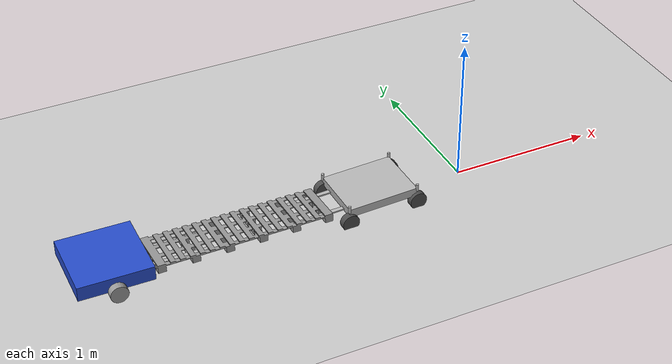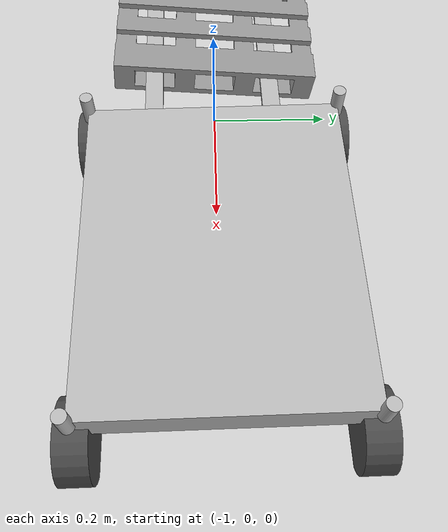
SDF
<sdf version="1.7">
 <world name="default">
  <light name="sun" type="directional">
   <pose>0 0 10 0 -0 0</pose>
   <diffuse>0.8 0.8 0.8 1</diffuse>
   <specular>0.2 0.2 0.2 1</specular>
   <attenuation>
    <range>1000</range>
    <constant>0.9</constant>
    <linear>0.01</linear>
    <quadratic>0.001</quadratic>
   </attenuation>
   <direction>-0.5 0.1 -0.9</direction>
   <spot><inner_angle>0</inner_angle><outer_angle>0</outer_angle><falloff>0</falloff></spot>
  </light>
  <model name="ground_plane">
   <static>1</static>
   <link name="link">
    <collision name="collision">
     <geometry><plane><normal>0 0 1</normal><size>100 100</size></plane></geometry>
     <surface><friction><ode><mu>100</mu><mu2>50</mu2></ode></friction></surface>
    </collision>
    <visual name="visual">
     <cast_shadows>0</cast_shadows>
     <geometry><plane><normal>0 0 1</normal><size>100 100</size></plane></geometry>
     <material>
      <script><uri>file://media/materials/scripts/gazebo.material</uri><name>Gazebo/Grey</name></script>
     </material>
    </visual>
   </link>
  </model>
  <gravity>0 0 -9.8</gravity>
  <magnetic_field>6e-06 2.3e-05 -4.2e-05</magnetic_field>
  <atmosphere type="adiabatic"/>
  <physics type="ode">
   <max_step_size>0.001</max_step_size>
   <real_time_factor>1</real_time_factor>
   <real_time_update_rate>1000</real_time_update_rate>
  </physics>
  <scene><ambient>0.4 0.4 0.4 1</ambient><background>0.7 0.7 0.7 1</background><shadows>1</shadows></scene>
  <audio><device>default</device></audio>
  <spherical_coordinates>
   <surface_model>EARTH_WGS84</surface_model>
   <latitude_deg>0</latitude_deg>
   <longitude_deg>0</longitude_deg>
   <elevation>0</elevation>
   <heading_deg>0</heading_deg>
  </spherical_coordinates>
  <model name="my_robot">
   <link name="base_footprint">
    <inertial>
     <pose>0.00298 0 0.083212 0 -0 0</pose>
     <mass>3.02</mass>
     <inertia>
      <ixx>0.0168339</ixx>
      <ixy>0</ixy>
      <ixz>0.000163907</ixz>
      <iyy>0.0584147</iyy>
      <iyz>8.47033e-22</iyz>
      <izz>0.0442952</izz>
     </inertia>
    </inertial>
    <collision name="base_footprint_fixed_joint_lump__base_link_collision">
     <pose>0 0 0.11 0 -0 0</pose>
     <geometry><box><size>0.5 0.5 0.1</size></box></geometry>
    </collision>
    <collision name="base_footprint_fixed_joint_lump__back_caster_wheel_link_collision_1">
     <pose>-0.166667 0 0.03 0 -0 0</pose>
     <geometry><sphere><radius>0.03</radius></sphere></geometry>
     <surface><friction><ode><mu>0.1</mu><mu2>0.1</mu2></ode></friction></surface>
    </collision>
    <collision name="base_footprint_fixed_joint_lump__front_caster_wheel_link_collision_2">
     <pose>0.166667 0 0.03 0 -0 0</pose>
     <geometry><sphere><radius>0.03</radius></sphere></geometry>
     <surface><friction><ode><mu>0.1</mu><mu2>0.1</mu2></ode></friction></surface>
    </collision>
    <collision name="base_footprint_fixed_joint_lump__left_fork_link_collision_3">
     <pose>0.45 0.105 0.06 0 -0 0</pose>
     <geometry><box><size>0.4 0.03 0.01</size></box></geometry>
    </collision>
    <collision name="base_footprint_fixed_joint_lump__right_fork_link_collision_4">
     <pose>0.45 -0.105 0.06 0 -0 0</pose>
     <geometry><box><size>0.4 0.03 0.01</size></box></geometry>
    </collision>
    <visual name="base_footprint_fixed_joint_lump__base_link_visual">
     <pose>0 0 0.11 0 -0 0</pose>
     <geometry><box><size>0.5 0.5 0.1</size></box></geometry>
     <material>
      <script><name>Gazebo/Blue</name><uri>file://media/materials/scripts/gazebo.material</uri></script>
     </material>
    </visual>
    <visual name="base_footprint_fixed_joint_lump__back_caster_wheel_link_visual_1">
     <pose>-0.166667 0 0.03 0 -0 0</pose>
     <geometry><sphere><radius>0.03</radius></sphere></geometry>
     <material>
      <script><name>Gazebo/Grey</name><uri>file://media/materials/scripts/gazebo.material</uri></script>
     </material>
    </visual>
    <visual name="base_footprint_fixed_joint_lump__front_caster_wheel_link_visual_2">
     <pose>0.166667 0 0.03 0 -0 0</pose>
     <geometry><sphere><radius>0.03</radius></sphere></geometry>
     <material>
      <script><name>Gazebo/Grey</name><uri>file://media/materials/scripts/gazebo.material</uri></script>
     </material>
    </visual>
    <visual name="base_footprint_fixed_joint_lump__left_fork_link_visual_3">
     <pose>0.45 0.105 0.06 0 -0 0</pose>
     <geometry><box><size>0.4 0.03 0.01</size></box></geometry>
    </visual>
    <visual name="base_footprint_fixed_joint_lump__right_fork_link_visual_4">
     <pose>0.45 -0.105 0.06 0 -0 0</pose>
     <geometry><box><size>0.4 0.03 0.01</size></box></geometry>
    </visual>
   </link>
   <joint name="base_left_wheel_joint" type="revolute">
    <pose relative_to="base_footprint">0 0.275 0.06 0 -0 0</pose>
    <parent>base_footprint</parent>
    <child>left_wheel_link</child>
    <axis>
     <xyz>0 1 0</xyz>
     <limit><lower>-1e+16</lower><upper>1e+16</upper></limit>
     <dynamics><spring_reference>0</spring_reference><spring_stiffness>0</spring_stiffness></dynamics>
    </axis>
   </joint>
   <link name="left_wheel_link">
    <pose relative_to="base_left_wheel_joint">0 0 0 0 -0 0</pose>
    <inertial>
     <pose>0 0 0 1.5708 -0 0</pose>
     <mass>0.5</mass>
     <inertia>
      <ixx>0.00221667</ixx>
      <ixy>0</ixy>
      <ixz>0</ixz>
      <iyy>0.00221667</iyy>
      <iyz>0</iyz>
      <izz>0.0006</izz>
     </inertia>
    </inertial>
    <collision name="left_wheel_link_collision">
     <pose>0 0 0 1.5708 -0 0</pose>
     <geometry><cylinder><length>0.05</length><radius>0.06</radius></cylinder></geometry>
    </collision>
    <visual name="left_wheel_link_visual">
     <pose>0 0 0 1.5708 -0 0</pose>
     <geometry><cylinder><length>0.05</length><radius>0.06</radius></cylinder></geometry>
     <material>
      <script><name>Gazebo/Grey</name><uri>file://media/materials/scripts/gazebo.material</uri></script>
     </material>
    </visual>
   </link>
   <joint name="base_right_wheel_joint" type="revolute">
    <pose relative_to="base_footprint">0 -0.275 0.06 0 -0 0</pose>
    <parent>base_footprint</parent>
    <child>right_wheel_link</child>
    <axis>
     <xyz>0 1 0</xyz>
     <limit><lower>-1e+16</lower><upper>1e+16</upper></limit>
     <dynamics><spring_reference>0</spring_reference><spring_stiffness>0</spring_stiffness></dynamics>
    </axis>
   </joint>
   <link name="right_wheel_link">
    <pose relative_to="base_right_wheel_joint">0 0 0 0 -0 0</pose>
    <inertial>
     <pose>0 0 0 1.5708 -0 0</pose>
     <mass>0.5</mass>
     <inertia>
      <ixx>0.00221667</ixx>
      <ixy>0</ixy>
      <ixz>0</ixz>
      <iyy>0.00221667</iyy>
      <iyz>0</iyz>
      <izz>0.0006</izz>
     </inertia>
    </inertial>
    <collision name="right_wheel_link_collision">
     <pose>0 0 0 1.5708 -0 0</pose>
     <geometry><cylinder><length>0.05</length><radius>0.06</radius></cylinder></geometry>
    </collision>
    <visual name="right_wheel_link_visual">
     <pose>0 0 0 1.5708 -0 0</pose>
     <geometry><cylinder><length>0.05</length><radius>0.06</radius></cylinder></geometry>
     <material>
      <script><name>Gazebo/Grey</name><uri>file://media/materials/scripts/gazebo.material</uri></script>
     </material>
    </visual>
   </link>
   <static>0</static>
   <plugin name="gazebo_ros_diff_drive" filename="libgazebo_ros_diff_drive.so">
    <ros><namespace>/diffdrive</namespace></ros>
    <update_rate>50</update_rate>
    <left_joint>base_left_wheel_joint</left_joint>
    <right_joint>base_right_wheel_joint</right_joint>
    <wheel_separation>0.5</wheel_separation>
    <wheel_diameter>0.12</wheel_diameter>
    <command_topic>cmd_vel</command_topic>
    <publish_odom>1</publish_odom>
    <publish_odom_tf>1</publish_odom_tf>
    <publish_wheel_tf>1</publish_wheel_tf>
    <odometry_topic>odom</odometry_topic>
    <odometry_frame>odom</odometry_frame>
    <robot_base_frame>base_footprint</robot_base_frame>
   </plugin>
   <pose>-2.50623 0.030365 0 0 -3.5e-05 -0.020039</pose>
  </model>
  <model name="car">
   <link name="base_footprint">
    <inertial>
     <pose>0.25 0 0.02 0 -0 0</pose>
     <mass>3.8</mass>
     <inertia>
      <ixx>0.0518067</ixx>
      <ixy>0</ixy>
      <ixz>-1.04083e-17</ixz>
      <iyy>0.0803067</iyy>
      <iyz>0</iyz>
      <izz>0.0803067</izz>
     </inertia>
    </inertial>
    <collision name="base_footprint_fixed_joint_lump__left_fork_link_collision">
     <pose>-0.15 0.1 0 0 -0 0</pose>
     <geometry><box><size>0.4 0.03 0.01</size></box></geometry>
    </collision>
    <collision name="base_footprint_fixed_joint_lump__right_fork_link_collision_1">
     <pose>-0.15 -0.1 0 0 -0 0</pose>
     <geometry><box><size>0.4 0.03 0.01</size></box></geometry>
    </collision>
    <collision name="base_footprint_fixed_joint_lump__chassis_link_collision_2">
     <pose>0.25 0 0.02 0 -0 0</pose>
     <geometry><box><size>0.5 0.4 0.06</size></box></geometry>
    </collision>
    <visual name="base_footprint_fixed_joint_lump__left_fork_link_visual">
     <pose>-0.15 0.1 0 0 -0 0</pose>
     <geometry><box><size>0.4 0.03 0.01</size></box></geometry>
    </visual>
    <visual name="base_footprint_fixed_joint_lump__right_fork_link_visual_1">
     <pose>-0.15 -0.1 0 0 -0 0</pose>
     <geometry><box><size>0.4 0.03 0.01</size></box></geometry>
    </visual>
    <visual name="base_footprint_fixed_joint_lump__chassis_link_visual_2">
     <pose>0.25 0 0.02 0 -0 0</pose>
     <geometry><box><size>0.5 0.4 0.06</size></box></geometry>
    </visual>
    <velocity_decay><linear>7e-05</linear><angular>7e-05</angular></velocity_decay>
   </link>
   <joint name="back_left_shock_joint" type="prismatic">
    <pose relative_to="base_footprint">0 0.2 -0.045 0 -0 0</pose>
    <parent>base_footprint</parent>
    <child>back_left_wheel_shock</child>
    <axis>
     <xyz>0 0 1</xyz>
     <limit><lower>0</lower><upper>0.09</upper><effort>100</effort><velocity>100</velocity></limit>
     <dynamics><spring_reference>0</spring_reference><spring_stiffness>0</spring_stiffness></dynamics>
    </axis>
   </joint>
   <link name="back_left_wheel_shock">
    <pose relative_to="back_left_shock_joint">0 0 0 0 -0 0</pose>
    <inertial>
     <mass>0.01</mass>
     <inertia><ixx>0.015</ixx><ixy>0</ixy><ixz>0</ixz><iyy>0.0375</iyy><iyz>0</iyz><izz>0.0375</izz></inertia>
    </inertial>
    <collision name="back_left_wheel_shock_collision">
     <pose>0 0 0.1 0 -0 0</pose>
     <geometry><cylinder><length>0.05</length><radius>0.01</radius></cylinder></geometry>
    </collision>
    <visual name="back_left_wheel_shock_visual">
     <pose>0 0 0.1 0 -0 0</pose>
     <geometry><cylinder><length>0.05</length><radius>0.01</radius></cylinder></geometry>
    </visual>
   </link>
   <joint name="back_left_wheel_joint" type="revolute">
    <pose relative_to="back_left_wheel_shock">0 0 0 -1.5708 0 0</pose>
    <parent>back_left_wheel_shock</parent>
    <child>back_left_wheel</child>
    <axis>
     <xyz>0 0 1</xyz>
     <limit><effort>10000</effort><velocity>500</velocity><lower>-1e+16</lower><upper>1e+16</upper></limit>
     <dynamics><spring_reference>0</spring_reference><spring_stiffness>0</spring_stiffness></dynamics>
    </axis>
   </joint>
   <link name="back_left_wheel">
    <pose relative_to="back_left_wheel_joint">0 0 0 0 -0 0</pose>
    <inertial>
     <mass>0.3</mass>
     <inertia>
      <ixx>0.000325225</ixx>
      <ixy>0</ixy>
      <ixz>0</ixz>
      <iyy>0.000325225</iyy>
      <iyz>0</iyz>
      <izz>0.00054</izz>
     </inertia>
    </inertial>
    <collision name="back_left_wheel_collision">
     <geometry><cylinder><length>0.047</length><radius>0.06</radius></cylinder></geometry>
     <surface><friction><ode><mu>1.5</mu></ode></friction></surface>
    </collision>
    <visual name="back_left_wheel_visual">
     <geometry><cylinder><length>0.047</length><radius>0.06</radius></cylinder></geometry>
     <material>
      <script><name>Gazebo/DarkGrey</name><uri>file://media/materials/scripts/gazebo.material</uri></script>
     </material>
    </visual>
   </link>
   <joint name="back_right_shock_joint" type="prismatic">
    <pose relative_to="base_footprint">0 -0.2 -0.045 0 -0 0</pose>
    <parent>base_footprint</parent>
    <child>back_right_wheel_shock</child>
    <axis>
     <xyz>0 0 1</xyz>
     <limit><lower>0</lower><upper>0.09</upper><effort>100</effort><velocity>100</velocity></limit>
     <dynamics><spring_reference>0</spring_reference><spring_stiffness>0</spring_stiffness></dynamics>
    </axis>
   </joint>
   <link name="back_right_wheel_shock">
    <pose relative_to="back_right_shock_joint">0 0 0 0 -0 0</pose>
    <inertial>
     <mass>0.01</mass>
     <inertia><ixx>0.015</ixx><ixy>0</ixy><ixz>0</ixz><iyy>0.0375</iyy><iyz>0</iyz><izz>0.0375</izz></inertia>
    </inertial>
    <collision name="back_right_wheel_shock_collision">
     <pose>0 0 0.1 0 -0 0</pose>
     <geometry><cylinder><length>0.05</length><radius>0.01</radius></cylinder></geometry>
    </collision>
    <visual name="back_right_wheel_shock_visual">
     <pose>0 0 0.1 0 -0 0</pose>
     <geometry><cylinder><length>0.05</length><radius>0.01</radius></cylinder></geometry>
    </visual>
   </link>
   <joint name="back_right_wheel_joint" type="revolute">
    <pose relative_to="back_right_wheel_shock">0 0 0 -1.5708 0 0</pose>
    <parent>back_right_wheel_shock</parent>
    <child>back_right_wheel</child>
    <axis>
     <xyz>0 0 1</xyz>
     <limit><effort>10000</effort><velocity>500</velocity><lower>-1e+16</lower><upper>1e+16</upper></limit>
     <dynamics><spring_reference>0</spring_reference><spring_stiffness>0</spring_stiffness></dynamics>
    </axis>
   </joint>
   <link name="back_right_wheel">
    <pose relative_to="back_right_wheel_joint">0 0 0 0 -0 0</pose>
    <inertial>
     <mass>0.3</mass>
     <inertia>
      <ixx>0.000325225</ixx>
      <ixy>0</ixy>
      <ixz>0</ixz>
      <iyy>0.000325225</iyy>
      <iyz>0</iyz>
      <izz>0.00054</izz>
     </inertia>
    </inertial>
    <collision name="back_right_wheel_collision">
     <geometry><cylinder><length>0.047</length><radius>0.06</radius></cylinder></geometry>
     <surface><friction><ode><mu>1.5</mu></ode></friction></surface>
    </collision>
    <visual name="back_right_wheel_visual">
     <geometry><cylinder><length>0.047</length><radius>0.06</radius></cylinder></geometry>
     <material>
      <script><name>Gazebo/DarkGrey</name><uri>file://media/materials/scripts/gazebo.material</uri></script>
     </material>
    </visual>
   </link>
   <joint name="front_left_shock_joint" type="prismatic">
    <pose relative_to="base_footprint">0.5 0.2 -0.045 0 -0 0</pose>
    <parent>base_footprint</parent>
    <child>front_left_wheel_shock</child>
    <axis>
     <xyz>0 0 1</xyz>
     <limit><lower>0</lower><upper>0.09</upper><effort>100</effort><velocity>100</velocity></limit>
     <dynamics><spring_reference>0</spring_reference><spring_stiffness>0</spring_stiffness></dynamics>
    </axis>
   </joint>
   <link name="front_left_wheel_shock">
    <pose relative_to="front_left_shock_joint">0 0 0 0 -0 0</pose>
    <inertial>
     <mass>0.01</mass>
     <inertia><ixx>0.015</ixx><ixy>0</ixy><ixz>0</ixz><iyy>0.0375</iyy><iyz>0</iyz><izz>0.0375</izz></inertia>
    </inertial>
    <collision name="front_left_wheel_shock_collision">
     <pose>0 0 0.1 0 -0 0</pose>
     <geometry><cylinder><length>0.05</length><radius>0.01</radius></cylinder></geometry>
    </collision>
    <visual name="front_left_wheel_shock_visual">
     <pose>0 0 0.1 0 -0 0</pose>
     <geometry><cylinder><length>0.05</length><radius>0.01</radius></cylinder></geometry>
    </visual>
   </link>
   <joint name="front_left_wheel_steer_joint" type="revolute">
    <pose relative_to="front_left_wheel_shock">0 0 0 0 -0 0</pose>
    <parent>front_left_wheel_shock</parent>
    <child>front_left_wheel_steer</child>
    <axis>
     <xyz>0 0 1</xyz>
     <limit><lower>-1</lower><upper>1</upper><effort>1</effort><velocity>5</velocity></limit>
     <dynamics><spring_reference>0</spring_reference><spring_stiffness>0</spring_stiffness></dynamics>
    </axis>
   </joint>
   <link name="front_left_wheel_steer">
    <pose relative_to="front_left_wheel_steer_joint">0 0 0 0 -0 0</pose>
    <inertial>
     <mass>0.1</mass>
     <inertia>
      <ixx>5.1458e-05</ixx>
      <ixy>0</ixy>
      <ixz>0</ixz>
      <iyy>5.1458e-05</iyy>
      <iyz>0</iyz>
      <izz>6.125e-05</izz>
     </inertia>
    </inertial>
    <collision name="front_left_wheel_steer_collision">
     <geometry><cylinder><length>0.01</length><radius>0.01</radius></cylinder></geometry>
    </collision>
    <visual name="front_left_wheel_steer_visual">
     <geometry><cylinder><length>0.01</length><radius>0.01</radius></cylinder></geometry>
    </visual>
   </link>
   <joint name="front_left_wheel_joint" type="revolute">
    <pose relative_to="front_left_wheel_steer">0 0 0 -1.5708 0 0</pose>
    <parent>front_left_wheel_steer</parent>
    <child>front_left_wheel</child>
    <axis>
     <xyz>0 0 1</xyz>
     <limit><lower>-1e+16</lower><upper>1e+16</upper></limit>
     <dynamics><spring_reference>0</spring_reference><spring_stiffness>0</spring_stiffness></dynamics>
    </axis>
   </joint>
   <link name="front_left_wheel">
    <pose relative_to="front_left_wheel_joint">0 0 0 0 -0 0</pose>
    <inertial>
     <mass>0.3</mass>
     <inertia>
      <ixx>0.000325225</ixx>
      <ixy>0</ixy>
      <ixz>0</ixz>
      <iyy>0.000325225</iyy>
      <iyz>0</iyz>
      <izz>0.00054</izz>
     </inertia>
    </inertial>
    <collision name="front_left_wheel_collision">
     <geometry><cylinder><length>0.047</length><radius>0.06</radius></cylinder></geometry>
     <surface><friction><ode><mu>1.5</mu></ode></friction></surface>
    </collision>
    <visual name="front_left_wheel_visual">
     <geometry><cylinder><length>0.047</length><radius>0.06</radius></cylinder></geometry>
     <material>
      <script><name>Gazebo/DarkGrey</name><uri>file://media/materials/scripts/gazebo.material</uri></script>
     </material>
    </visual>
   </link>
   <joint name="front_right_shock_joint" type="prismatic">
    <pose relative_to="base_footprint">0.5 -0.2 -0.045 0 -0 0</pose>
    <parent>base_footprint</parent>
    <child>front_right_wheel_shock</child>
    <axis>
     <xyz>0 0 1</xyz>
     <limit><lower>0</lower><upper>0.09</upper><effort>100</effort><velocity>100</velocity></limit>
     <dynamics><spring_reference>0</spring_reference><spring_stiffness>0</spring_stiffness></dynamics>
    </axis>
   </joint>
   <link name="front_right_wheel_shock">
    <pose relative_to="front_right_shock_joint">0 0 0 0 -0 0</pose>
    <inertial>
     <mass>0.01</mass>
     <inertia><ixx>0.015</ixx><ixy>0</ixy><ixz>0</ixz><iyy>0.0375</iyy><iyz>0</iyz><izz>0.0375</izz></inertia>
    </inertial>
    <collision name="front_right_wheel_shock_collision">
     <pose>0 0 0.1 0 -0 0</pose>
     <geometry><cylinder><length>0.05</length><radius>0.01</radius></cylinder></geometry>
    </collision>
    <visual name="front_right_wheel_shock_visual">
     <pose>0 0 0.1 0 -0 0</pose>
     <geometry><cylinder><length>0.05</length><radius>0.01</radius></cylinder></geometry>
    </visual>
   </link>
   <joint name="front_right_wheel_steer_joint" type="revolute">
    <pose relative_to="front_right_wheel_shock">0 0 0 0 -0 0</pose>
    <parent>front_right_wheel_shock</parent>
    <child>front_right_wheel_steer</child>
    <axis>
     <xyz>0 0 1</xyz>
     <limit><lower>-1</lower><upper>1</upper><effort>1</effort><velocity>5</velocity></limit>
     <dynamics><spring_reference>0</spring_reference><spring_stiffness>0</spring_stiffness></dynamics>
    </axis>
   </joint>
   <link name="front_right_wheel_steer">
    <pose relative_to="front_right_wheel_steer_joint">0 0 0 0 -0 0</pose>
    <inertial>
     <mass>0.1</mass>
     <inertia>
      <ixx>5.1458e-05</ixx>
      <ixy>0</ixy>
      <ixz>0</ixz>
      <iyy>5.1458e-05</iyy>
      <iyz>0</iyz>
      <izz>6.125e-05</izz>
     </inertia>
    </inertial>
    <collision name="front_right_wheel_steer_collision">
     <geometry><cylinder><length>0.01</length><radius>0.01</radius></cylinder></geometry>
    </collision>
    <visual name="front_right_wheel_steer_visual">
     <geometry><cylinder><length>0.01</length><radius>0.01</radius></cylinder></geometry>
    </visual>
   </link>
   <joint name="front_right_wheel_joint" type="revolute">
    <pose relative_to="front_right_wheel_steer">0 0 0 -1.5708 0 0</pose>
    <parent>front_right_wheel_steer</parent>
    <child>front_right_wheel</child>
    <axis>
     <xyz>0 0 1</xyz>
     <limit><lower>-1e+16</lower><upper>1e+16</upper></limit>
     <dynamics><spring_reference>0</spring_reference><spring_stiffness>0</spring_stiffness></dynamics>
    </axis>
   </joint>
   <link name="front_right_wheel">
    <pose relative_to="front_right_wheel_joint">0 0 0 0 -0 0</pose>
    <inertial>
     <mass>0.3</mass>
     <inertia>
      <ixx>0.000325225</ixx>
      <ixy>0</ixy>
      <ixz>0</ixz>
      <iyy>0.000325225</iyy>
      <iyz>0</iyz>
      <izz>0.00054</izz>
     </inertia>
    </inertial>
    <collision name="front_right_wheel_collision">
     <geometry><cylinder><length>0.047</length><radius>0.06</radius></cylinder></geometry>
     <surface><friction><ode><mu>1.5</mu></ode></friction></surface>
    </collision>
    <visual name="front_right_wheel_visual">
     <geometry><cylinder><length>0.047</length><radius>0.06</radius></cylinder></geometry>
     <material>
      <script><name>Gazebo/DarkGrey</name><uri>file://media/materials/scripts/gazebo.material</uri></script>
     </material>
    </visual>
   </link>
   <static>0</static>
   <plugin name="car_gazebo_plugin" filename="libcar_gazebo_plugin.so">
    <ros><namespace>/car</namespace></ros>
   </plugin>
   <pose>-0.924376 -0.002141 0.076209 -0.000906 -0.023375 0.017229</pose>
  </model>
  <model name="pallet">
   <link name="link_3">
    <inertial>
     <mass>1</mass>
     <inertia>
      <ixx>0.166667</ixx>
      <ixy>0</ixy>
      <ixz>0</ixz>
      <iyy>0.166667</iyy>
      <iyz>0</iyz>
      <izz>0.166667</izz>
     </inertia>
    </inertial>
    <pose>0 -4e-06 0 0 -0 0</pose>
    <visual name="visual">
     <geometry>
      <mesh><uri>/home/fang/ros2_ws/src/my_robot_description/meshes/long_pallet.stl</uri><scale>1 1 1</scale></mesh>
     </geometry>
     <material>
      <lighting>1</lighting>
      <script><uri>file://media/materials/scripts/gazebo.material</uri><name>Gazebo/Grey</name></script>
      <shader type="pixel"/>
     </material>
    </visual>
    <collision name="collision">
     <geometry>
      <mesh><uri>/home/fang/ros2_ws/src/my_robot_description/meshes/long_pallet.stl</uri><scale>1 1 1</scale></mesh>
     </geometry>
     <surface>
      <friction>
       <ode><mu>1</mu><mu2>1</mu2><fdir1>0 0 0</fdir1><slip1>0</slip1><slip2>0</slip2></ode>
       <torsional>
        <coefficient>1</coefficient>
        <patch_radius>0</patch_radius>
        <surface_radius>0</surface_radius>
        <use_patch_radius>1</use_patch_radius>
        <ode><slip>0</slip></ode>
       </torsional>
      </friction>
      <bounce><restitution_coefficient>0</restitution_coefficient><threshold>1e+06</threshold></bounce>
      <contact>
       <collide_without_contact>0</collide_without_contact>
       <collide_without_contact_bitmask>1</collide_without_contact_bitmask>
       <collide_bitmask>1</collide_bitmask>
       <ode>
        <soft_cfm>0</soft_cfm>
        <soft_erp>0.2</soft_erp>
        <kp>1e+13</kp>
        <kd>1</kd>
        <max_vel>0.01</max_vel>
        <min_depth>0</min_depth>
       </ode>
       <bullet>
        <split_impulse>1</split_impulse>
        <split_impulse_penetration_threshold>-0.01</split_impulse_penetration_threshold>
        <soft_cfm>0</soft_cfm>
        <soft_erp>0.2</soft_erp>
        <kp>1e+13</kp>
        <kd>1</kd>
       </bullet>
      </contact>
     </surface>
    </collision>
   </link>
   <static>0</static>
   <pose>-1.31092 0.273074 -0.155368 0.009306 -0.096681 -1.57589</pose>
  </model>
 </world>
</sdf>
